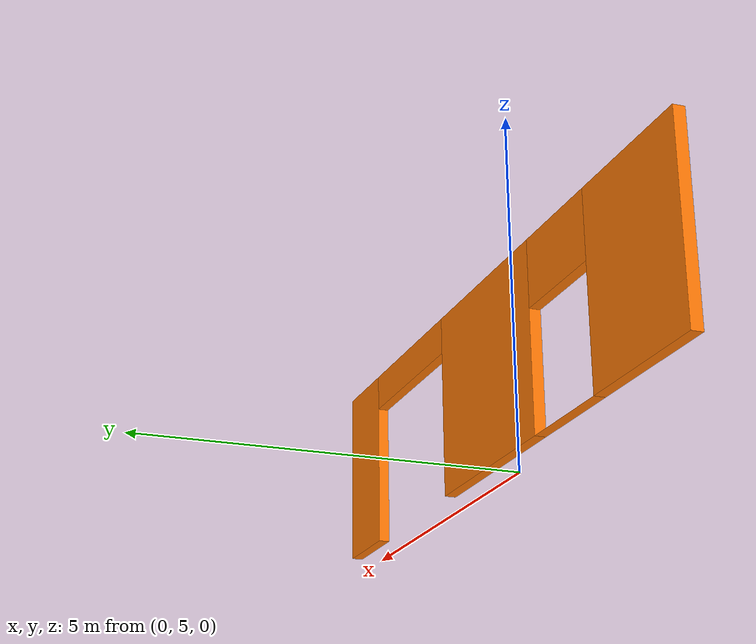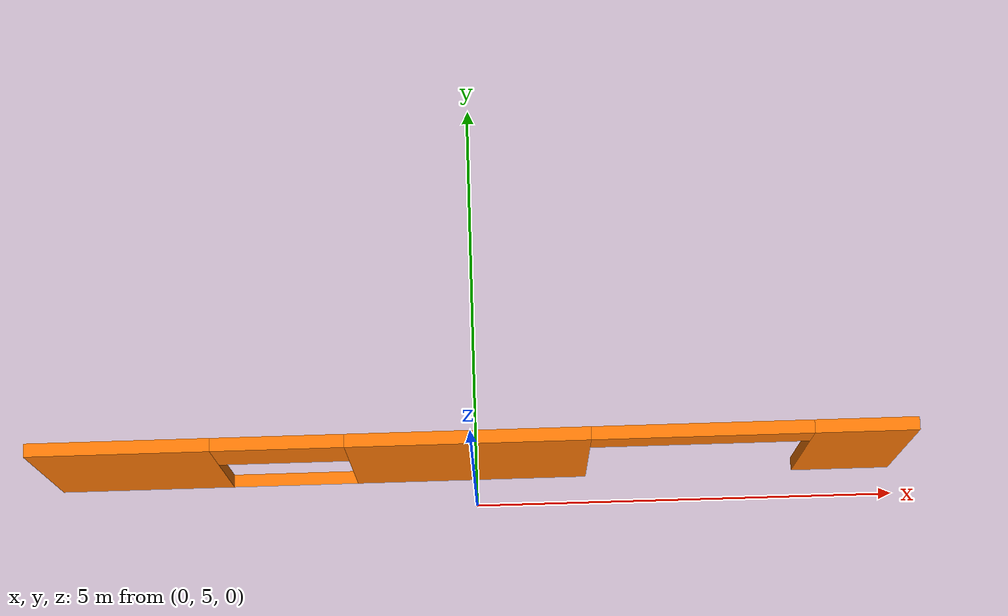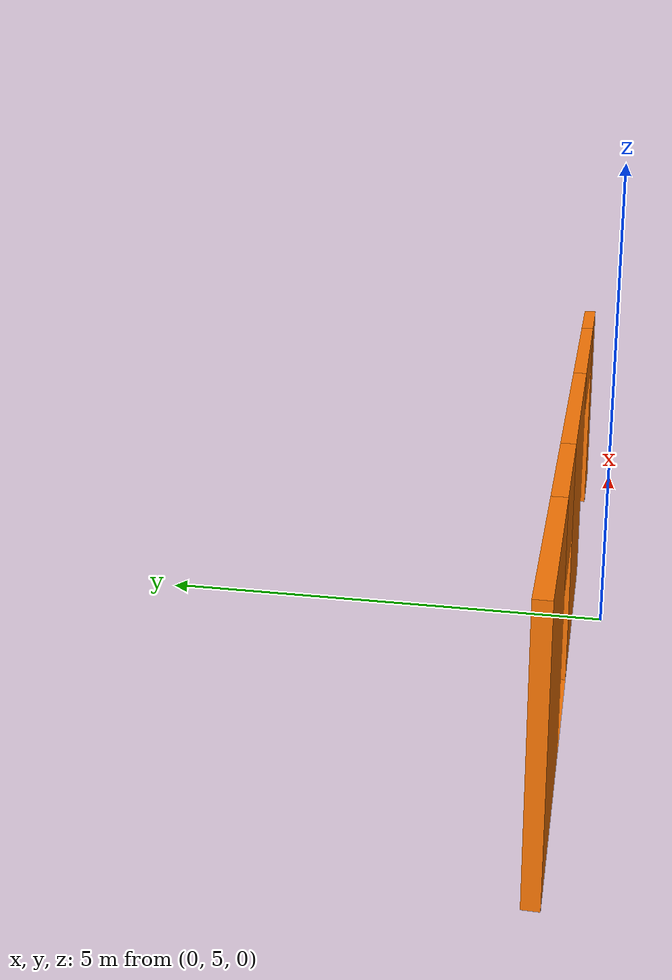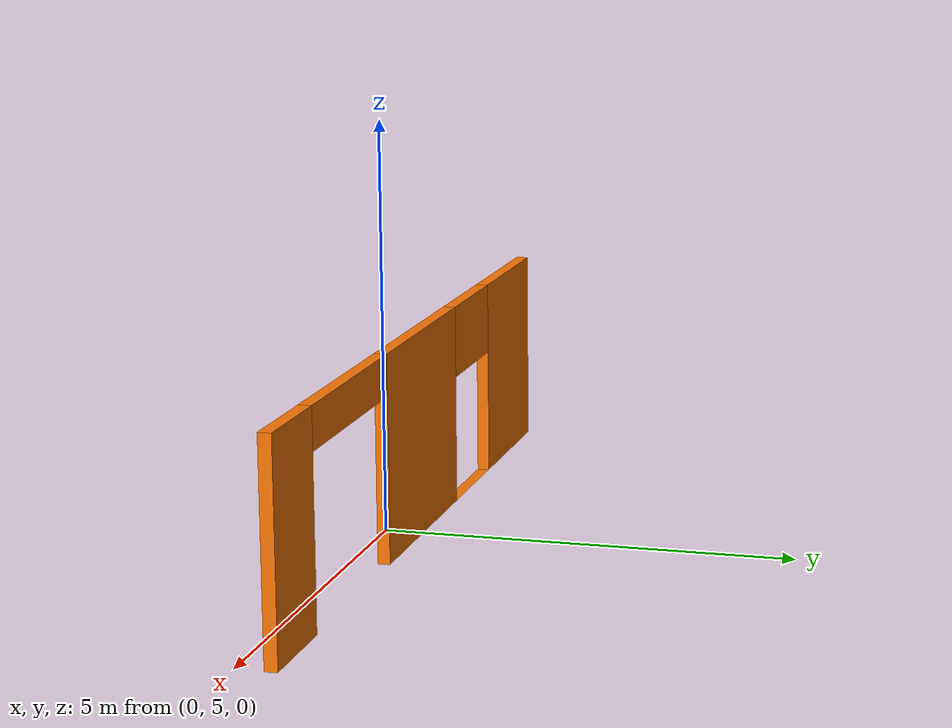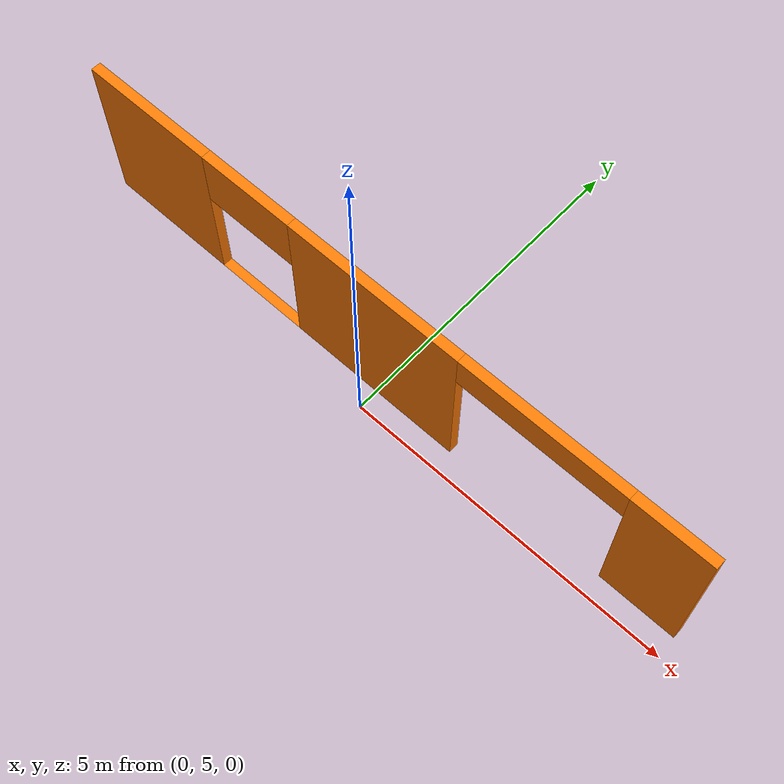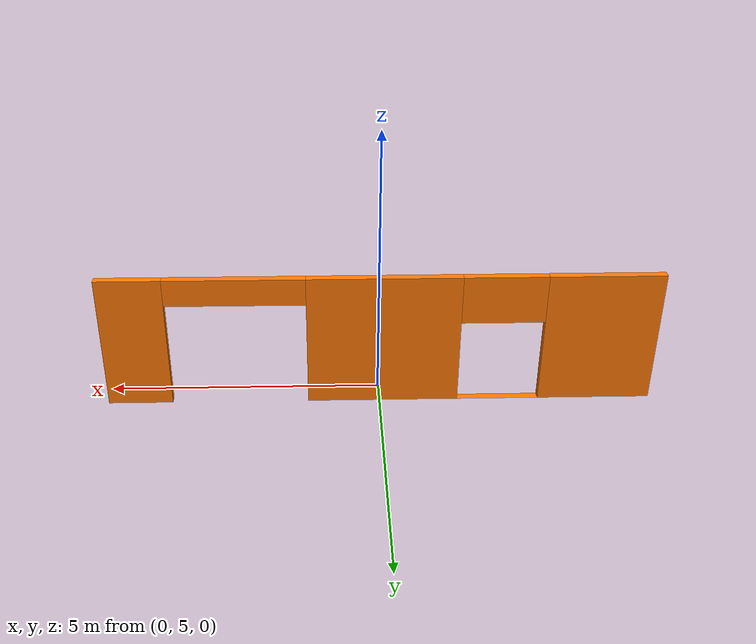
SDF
<?xml version='1.0'?>
<sdf version='1.6'>
  <model name='varying_doors4'>
    <pose frame=''>-0.014349 5.39487 0 0 -0 0</pose>
    <link name='Wall_0'>
      <pose frame=''>0 0 0 0 -0 3.14159</pose>
      <visual name='Wall_0_Visual_0'>
        <pose frame=''>-4.41289 0 1.25 0 -0 0</pose>
        <geometry>
          <box>
            <size>1.17421 0.15 2.5</size>
          </box>
        </geometry>
        <material>
          <script>
            <uri>file://media/materials/scripts/gazebo.material</uri>
            <name>Gazebo/Grey</name>
          </script>
          <ambient>0.996078 0.47451 0.0196078 1</ambient>
        </material>
      </visual>
      <collision name='Wall_0_Collision_0'>
        <geometry>
          <box>
            <size>1.17421 0.15 2.5</size>
          </box>
        </geometry>
        <pose frame=''>-4.41289 0 1.25 0 -0 0</pose>
      </collision>
      <visual name='Wall_0_Visual_1'>
        <pose frame=''>0.052859 0 1.25 0 -0 0</pose>
        <geometry>
          <box>
            <size>2.7573 0.15 2.5</size>
          </box>
        </geometry>
        <material>
          <script>
            <uri>file://media/materials/scripts/gazebo.material</uri>
            <name>Gazebo/Grey</name>
          </script>
          <ambient>0.996078 0.47451 0.0196078 1</ambient>
        </material>
      </visual>
      <collision name='Wall_0_Collision_1'>
        <geometry>
          <box>
            <size>2.7573 0.15 2.5</size>
          </box>
        </geometry>
        <pose frame=''>0.052859 0 1.25 0 -0 0</pose>
      </collision>
      <visual name='Wall_0_Visual_2'>
        <pose frame=''>3.96575 0 1.25 0 -0 0</pose>
        <geometry>
          <box>
            <size>2.06849 0.15 2.5</size>
          </box>
        </geometry>
        <material>
          <script>
            <uri>file://media/materials/scripts/gazebo.material</uri>
            <name>Gazebo/Grey</name>
          </script>
          <ambient>0.996078 0.47451 0.0196078 1</ambient>
        </material>
      </visual>
      <collision name='Wall_0_Collision_2'>
        <geometry>
          <box>
            <size>2.06849 0.15 2.5</size>
          </box>
        </geometry>
        <pose frame=''>3.96575 0 1.25 0 -0 0</pose>
      </collision>
      <visual name='Wall_0_Visual_3'>
        <pose frame=''>2.18151 0 0 0 -0 0</pose>
        <geometry>
          <box>
            <size>1.5 0.15 0</size>
          </box>
        </geometry>
        <material>
          <script>
            <uri>file://media/materials/scripts/gazebo.material</uri>
            <name>Gazebo/Grey</name>
          </script>
          <ambient>0.996078 0.47451 0.0196078 1</ambient>
        </material>
      </visual>
      <collision name='Wall_0_Collision_3'>
        <geometry>
          <box>
            <size>1.5 0.15 0</size>
          </box>
        </geometry>
        <pose frame=''>2.18151 0 0 0 -0 0</pose>
      </collision>
      <visual name='Wall_0_Visual_4'>
        <pose frame=''>2.18151 0 2.05 0 -0 0</pose>
        <geometry>
          <box>
            <size>1.5 0.15 0.9</size>
          </box>
        </geometry>
        <material>
          <script>
            <uri>file://media/materials/scripts/gazebo.material</uri>
            <name>Gazebo/Grey</name>
          </script>
          <ambient>0.996078 0.47451 0.0196078 1</ambient>
        </material>
      </visual>
      <collision name='Wall_0_Collision_4'>
        <geometry>
          <box>
            <size>1.5 0.15 0.9</size>
          </box>
        </geometry>
        <pose frame=''>2.18151 0 2.05 0 -0 0</pose>
      </collision>
      <visual name='Wall_0_Visual_5'>
        <pose frame=''>-2.57579 0 2.25 0 -0 0</pose>
        <geometry>
          <box>
            <size>2.5 0.15 0.5</size>
          </box>
        </geometry>
        <material>
          <script>
            <uri>file://media/materials/scripts/gazebo.material</uri>
            <name>Gazebo/Grey</name>
          </script>
          <ambient>0.996078 0.47451 0.0196078 1</ambient>
        </material>
      </visual>
      <collision name='Wall_0_Collision_5'>
        <geometry>
          <box>
            <size>2.5 0.15 0.5</size>
          </box>
        </geometry>
        <pose frame=''>-2.57579 0 2.25 0 -0 0</pose>
      </collision>
    </link>
    <static>1</static>
  </model>
</sdf>
